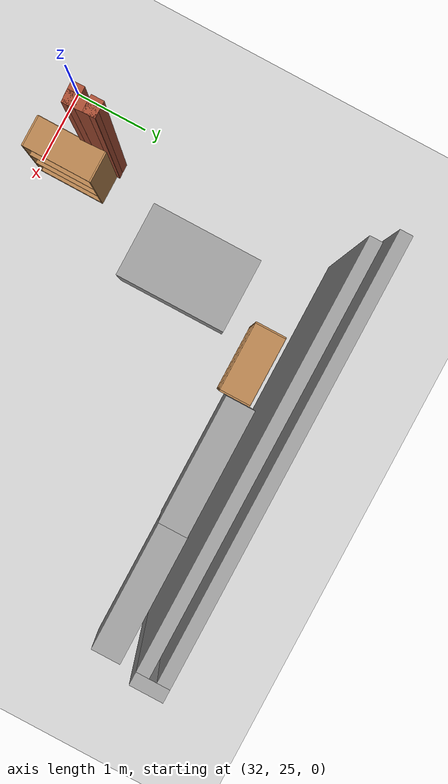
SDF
<sdf version="1.6">
 <world name="default">
  <model name="ground_plane">
   <static>1</static>
   <link name="link">
    <collision name="collision">
     <geometry><plane><normal>0 0 1</normal><size>100 100</size></plane></geometry>
     <surface><friction><ode><mu>100</mu><mu2>50</mu2></ode></friction></surface>
    </collision>
    <visual name="visual">
     <cast_shadows>0</cast_shadows>
     <geometry><plane><normal>0 0 1</normal><size>100 100</size></plane></geometry>
     <material>
      <script><uri>file://media/materials/scripts/gazebo.material</uri><name>Gazebo/Grey</name></script>
     </material>
    </visual>
   </link>
  </model>
  <model name="CVSSP">
   <pose>23.8714 24.094 0 0 -0 0</pose>
   <link name="Wall_101">
    <collision name="Wall_101_Collision">
     <geometry><box><size>0.38805 0.15 2.5</size></box></geometry>
     <pose>0 0 1.25 0 -0 0</pose>
    </collision>
    <visual name="Wall_101_Visual">
     <pose>0 0 1.25 0 -0 0</pose>
     <geometry><box><size>0.38805 0.15 2.5</size></box></geometry>
     <material>
      <script><uri>file://media/materials/scripts/gazebo.material</uri><name>Gazebo/Grey</name></script>
      <ambient>1 1 1 1</ambient>
     </material>
    </visual>
    <pose>13.6125 5.08725 0 0 0 -1.5708</pose>
   </link>
   <link name="Wall_815">
    <collision name="Wall_815_Collision">
     <geometry><box><size>0.199149 0.15 2.5</size></box></geometry>
     <pose>0 0 1.25 0 -0 0</pose>
    </collision>
    <visual name="Wall_815_Visual">
     <pose>0 0 1.25 0 -0 0</pose>
     <geometry><box><size>0.199149 0.15 2.5</size></box></geometry>
     <material>
      <script><uri>file://media/materials/scripts/gazebo.material</uri><name>Gazebo/Bricks</name></script>
      <ambient>1 1 1 1</ambient>
     </material>
    </visual>
    <pose>8.74892 1.83972 0 0 -0 0</pose>
   </link>
   <link name="Wall_816">
    <collision name="Wall_816_Collision">
     <geometry><box><size>0.384892 0.15 2.5</size></box></geometry>
     <pose>0 0 1.25 0 -0 0</pose>
    </collision>
    <visual name="Wall_816_Visual">
     <pose>0 0 1.25 0 -0 0</pose>
     <geometry><box><size>0.384892 0.15 2.5</size></box></geometry>
     <material>
      <script><uri>file://media/materials/scripts/gazebo.material</uri><name>Gazebo/Bricks</name></script>
      <ambient>1 1 1 1</ambient>
     </material>
    </visual>
    <pose>8.77916 1.72252 0 0 0 -1.52245</pose>
   </link>
   <link name="Wall_817">
    <collision name="Wall_817_Collision">
     <geometry><box><size>0.24482 0.15 2.5</size></box></geometry>
     <pose>0 0 1.25 0 -0 0</pose>
    </collision>
    <visual name="Wall_817_Visual">
     <pose>0 0 1.25 0 -0 0</pose>
     <geometry><box><size>0.24482 0.15 2.5</size></box></geometry>
     <material>
      <script><uri>file://media/materials/scripts/gazebo.material</uri><name>Gazebo/Bricks</name></script>
      <ambient>1 1 1 1</ambient>
     </material>
    </visual>
    <pose>8.73757 1.60343 0 0 0 -3.10161</pose>
   </link>
   <link name="Wall_95">
    <collision name="Wall_95_Collision">
     <geometry><box><size>5.10938 0.15 2.5</size></box></geometry>
     <pose>0 0 1.25 0 -0 0</pose>
    </collision>
    <visual name="Wall_95_Visual">
     <pose>0 0 1.25 0 -0 0</pose>
     <geometry><box><size>5.10938 0.15 2.5</size></box></geometry>
     <material>
      <script><uri>file://media/materials/scripts/gazebo.material</uri><name>Gazebo/Grey</name></script>
      <ambient>1 1 1 1</ambient>
     </material>
    </visual>
    <pose>11.1328 4.96823 0 0 -0 0</pose>
   </link>
   <link name="Wall_99">
    <collision name="Wall_99_Collision">
     <geometry><box><size>5.30775 0.15 2.5</size></box></geometry>
     <pose>0 0 1.25 0 -0 0</pose>
    </collision>
    <visual name="Wall_99_Visual">
     <pose>0 0 1.25 0 -0 0</pose>
     <geometry><box><size>5.30775 0.15 2.5</size></box></geometry>
     <material>
      <script><uri>file://media/materials/scripts/gazebo.material</uri><name>Gazebo/Grey</name></script>
      <ambient>1 1 1 1</ambient>
     </material>
    </visual>
    <pose>11.0336 5.20628 0 0 -0 3.14159</pose>
   </link>
   <static>1</static>
  </model>
  <model name="bookshelf_oak">
   <link name="link">
    <inertial><mass>1</mass></inertial>
    <visual name="visual4">
     <pose>0 -0.195 0.03 0 -0 0</pose>
     <geometry><box><size>0.88 0.4 0.06</size></box></geometry>
     <material>
      <script><uri>file://media/materials/scripts/gazebo.material</uri><name>Gazebo/Wood</name></script>
      <shader type="pixel"/>
     </material>
    </visual>
    <visual name="visual3">
     <pose>-0.45 -0.195 0.6 0 -0 0</pose>
     <geometry><box><size>0.02 0.4 1.2</size></box></geometry>
     <material>
      <script><uri>file://media/materials/scripts/gazebo.material</uri><name>Gazebo/Wood</name></script>
      <shader type="pixel"/>
     </material>
    </visual>
    <visual name="visual5">
     <pose>0 -0.195 1.19 0 -0 0</pose>
     <geometry><box><size>0.88 0.4 0.02</size></box></geometry>
     <material>
      <script><uri>file://media/materials/scripts/gazebo.material</uri><name>Gazebo/Wood</name></script>
      <shader type="pixel"/>
     </material>
    </visual>
    <visual name="visual2">
     <pose>0.45 -0.195 0.6 0 -0 0</pose>
     <geometry><box><size>0.02 0.4 1.2</size></box></geometry>
     <material>
      <script><uri>file://media/materials/scripts/gazebo.material</uri><name>Gazebo/Wood</name></script>
      <shader type="pixel"/>
     </material>
    </visual>
    <visual name="visual1">
     <pose>0 0.005 0.6 0 -0 0</pose>
     <geometry><box><size>0.9 0.01 1.2</size></box></geometry>
     <material>
      <script><uri>file://media/materials/scripts/gazebo.material</uri><name>Gazebo/Wood</name></script>
      <shader type="pixel"/>
     </material>
    </visual>
    <visual name="visual6">
     <pose>0 -0.195 0.43 0 -0 0</pose>
     <geometry><box><size>0.88 0.4 0.02</size></box></geometry>
     <material>
      <script><uri>file://media/materials/scripts/gazebo.material</uri><name>Gazebo/Wood</name></script>
      <shader type="pixel"/>
     </material>
    </visual>
    <visual name="visual7">
     <pose>0 -0.195 0.8 0 -0 0</pose>
     <geometry><box><size>0.88 0.4 0.02</size></box></geometry>
     <material>
      <script><uri>file://media/materials/scripts/gazebo.material</uri><name>Gazebo/Wood</name></script>
      <shader type="pixel"/>
     </material>
    </visual>
    <collision name="back">
     <pose>0 0.005 0.6 0 -0 0</pose>
     <geometry><box><size>0.9 0.01 1.2</size></box></geometry>
     <surface>
      <friction>
       <ode><mu>1</mu><mu2>1</mu2><fdir1>0 0 0</fdir1><slip1>0</slip1><slip2>0</slip2></ode>
       <torsional>
        <coefficient>1</coefficient>
        <patch_radius>0</patch_radius>
        <surface_radius>0</surface_radius>
        <use_patch_radius>1</use_patch_radius>
        <ode><slip>0</slip></ode>
       </torsional>
      </friction>
      <bounce><restitution_coefficient>0</restitution_coefficient><threshold>1e+06</threshold></bounce>
      <contact>
       <collide_without_contact>0</collide_without_contact>
       <collide_without_contact_bitmask>1</collide_without_contact_bitmask>
       <collide_bitmask>1</collide_bitmask>
       <ode>
        <soft_cfm>0</soft_cfm>
        <soft_erp>0.2</soft_erp>
        <kp>1e+13</kp>
        <kd>1</kd>
        <max_vel>0.01</max_vel>
        <min_depth>0</min_depth>
       </ode>
       <bullet>
        <split_impulse>1</split_impulse>
        <split_impulse_penetration_threshold>-0.01</split_impulse_penetration_threshold>
        <soft_cfm>0</soft_cfm>
        <soft_erp>0.2</soft_erp>
        <kp>1e+13</kp>
        <kd>1</kd>
       </bullet>
      </contact>
     </surface>
    </collision>
    <collision name="left_side">
     <pose>0.45 -0.195 0.6 0 -0 0</pose>
     <geometry><box><size>0.02 0.4 1.2</size></box></geometry>
     <surface>
      <friction>
       <ode><mu>1</mu><mu2>1</mu2><fdir1>0 0 0</fdir1><slip1>0</slip1><slip2>0</slip2></ode>
       <torsional>
        <coefficient>1</coefficient>
        <patch_radius>0</patch_radius>
        <surface_radius>0</surface_radius>
        <use_patch_radius>1</use_patch_radius>
        <ode><slip>0</slip></ode>
       </torsional>
      </friction>
      <bounce><restitution_coefficient>0</restitution_coefficient><threshold>1e+06</threshold></bounce>
      <contact>
       <collide_without_contact>0</collide_without_contact>
       <collide_without_contact_bitmask>1</collide_without_contact_bitmask>
       <collide_bitmask>1</collide_bitmask>
       <ode>
        <soft_cfm>0</soft_cfm>
        <soft_erp>0.2</soft_erp>
        <kp>1e+13</kp>
        <kd>1</kd>
        <max_vel>0.01</max_vel>
        <min_depth>0</min_depth>
       </ode>
       <bullet>
        <split_impulse>1</split_impulse>
        <split_impulse_penetration_threshold>-0.01</split_impulse_penetration_threshold>
        <soft_cfm>0</soft_cfm>
        <soft_erp>0.2</soft_erp>
        <kp>1e+13</kp>
        <kd>1</kd>
       </bullet>
      </contact>
     </surface>
    </collision>
    <collision name="right_side">
     <pose>-0.45 -0.195 0.6 0 -0 0</pose>
     <geometry><box><size>0.02 0.4 1.2</size></box></geometry>
     <surface>
      <friction>
       <ode><mu>1</mu><mu2>1</mu2><fdir1>0 0 0</fdir1><slip1>0</slip1><slip2>0</slip2></ode>
       <torsional>
        <coefficient>1</coefficient>
        <patch_radius>0</patch_radius>
        <surface_radius>0</surface_radius>
        <use_patch_radius>1</use_patch_radius>
        <ode><slip>0</slip></ode>
       </torsional>
      </friction>
      <bounce><restitution_coefficient>0</restitution_coefficient><threshold>1e+06</threshold></bounce>
      <contact>
       <collide_without_contact>0</collide_without_contact>
       <collide_without_contact_bitmask>1</collide_without_contact_bitmask>
       <collide_bitmask>1</collide_bitmask>
       <ode>
        <soft_cfm>0</soft_cfm>
        <soft_erp>0.2</soft_erp>
        <kp>1e+13</kp>
        <kd>1</kd>
        <max_vel>0.01</max_vel>
        <min_depth>0</min_depth>
       </ode>
       <bullet>
        <split_impulse>1</split_impulse>
        <split_impulse_penetration_threshold>-0.01</split_impulse_penetration_threshold>
        <soft_cfm>0</soft_cfm>
        <soft_erp>0.2</soft_erp>
        <kp>1e+13</kp>
        <kd>1</kd>
       </bullet>
      </contact>
     </surface>
    </collision>
    <collision name="bottom">
     <pose>0 -0.195 0.03 0 -0 0</pose>
     <geometry><box><size>0.88 0.4 0.06</size></box></geometry>
     <surface>
      <friction>
       <ode><mu>1</mu><mu2>1</mu2><fdir1>0 0 0</fdir1><slip1>0</slip1><slip2>0</slip2></ode>
       <torsional>
        <coefficient>1</coefficient>
        <patch_radius>0</patch_radius>
        <surface_radius>0</surface_radius>
        <use_patch_radius>1</use_patch_radius>
        <ode><slip>0</slip></ode>
       </torsional>
      </friction>
      <bounce><restitution_coefficient>0</restitution_coefficient><threshold>1e+06</threshold></bounce>
      <contact>
       <collide_without_contact>0</collide_without_contact>
       <collide_without_contact_bitmask>1</collide_without_contact_bitmask>
       <collide_bitmask>1</collide_bitmask>
       <ode>
        <soft_cfm>0</soft_cfm>
        <soft_erp>0.2</soft_erp>
        <kp>1e+13</kp>
        <kd>1</kd>
        <max_vel>0.01</max_vel>
        <min_depth>0</min_depth>
       </ode>
       <bullet>
        <split_impulse>1</split_impulse>
        <split_impulse_penetration_threshold>-0.01</split_impulse_penetration_threshold>
        <soft_cfm>0</soft_cfm>
        <soft_erp>0.2</soft_erp>
        <kp>1e+13</kp>
        <kd>1</kd>
       </bullet>
      </contact>
     </surface>
    </collision>
    <collision name="top">
     <pose>0 -0.195 1.19 0 -0 0</pose>
     <geometry><box><size>0.88 0.4 0.02</size></box></geometry>
     <surface>
      <friction>
       <ode><mu>1</mu><mu2>1</mu2><fdir1>0 0 0</fdir1><slip1>0</slip1><slip2>0</slip2></ode>
       <torsional>
        <coefficient>1</coefficient>
        <patch_radius>0</patch_radius>
        <surface_radius>0</surface_radius>
        <use_patch_radius>1</use_patch_radius>
        <ode><slip>0</slip></ode>
       </torsional>
      </friction>
      <bounce><restitution_coefficient>0</restitution_coefficient><threshold>1e+06</threshold></bounce>
      <contact>
       <collide_without_contact>0</collide_without_contact>
       <collide_without_contact_bitmask>1</collide_without_contact_bitmask>
       <collide_bitmask>1</collide_bitmask>
       <ode>
        <soft_cfm>0</soft_cfm>
        <soft_erp>0.2</soft_erp>
        <kp>1e+13</kp>
        <kd>1</kd>
        <max_vel>0.01</max_vel>
        <min_depth>0</min_depth>
       </ode>
       <bullet>
        <split_impulse>1</split_impulse>
        <split_impulse_penetration_threshold>-0.01</split_impulse_penetration_threshold>
        <soft_cfm>0</soft_cfm>
        <soft_erp>0.2</soft_erp>
        <kp>1e+13</kp>
        <kd>1</kd>
       </bullet>
      </contact>
     </surface>
    </collision>
    <collision name="low_shelf">
     <pose>0 -0.195 0.43 0 -0 0</pose>
     <geometry><box><size>0.88 0.4 0.02</size></box></geometry>
     <surface>
      <friction>
       <ode><mu>1</mu><mu2>1</mu2><fdir1>0 0 0</fdir1><slip1>0</slip1><slip2>0</slip2></ode>
       <torsional>
        <coefficient>1</coefficient>
        <patch_radius>0</patch_radius>
        <surface_radius>0</surface_radius>
        <use_patch_radius>1</use_patch_radius>
        <ode><slip>0</slip></ode>
       </torsional>
      </friction>
      <bounce><restitution_coefficient>0</restitution_coefficient><threshold>1e+06</threshold></bounce>
      <contact>
       <collide_without_contact>0</collide_without_contact>
       <collide_without_contact_bitmask>1</collide_without_contact_bitmask>
       <collide_bitmask>1</collide_bitmask>
       <ode>
        <soft_cfm>0</soft_cfm>
        <soft_erp>0.2</soft_erp>
        <kp>1e+13</kp>
        <kd>1</kd>
        <max_vel>0.01</max_vel>
        <min_depth>0</min_depth>
       </ode>
       <bullet>
        <split_impulse>1</split_impulse>
        <split_impulse_penetration_threshold>-0.01</split_impulse_penetration_threshold>
        <soft_cfm>0</soft_cfm>
        <soft_erp>0.2</soft_erp>
        <kp>1e+13</kp>
        <kd>1</kd>
       </bullet>
      </contact>
     </surface>
    </collision>
    <collision name="high_shelf">
     <pose>0 -0.195 0.8 0 -0 0</pose>
     <geometry><box><size>0.88 0.4 0.02</size></box></geometry>
     <surface>
      <friction>
       <ode><mu>1</mu><mu2>1</mu2><fdir1>0 0 0</fdir1><slip1>0</slip1><slip2>0</slip2></ode>
       <torsional>
        <coefficient>1</coefficient>
        <patch_radius>0</patch_radius>
        <surface_radius>0</surface_radius>
        <use_patch_radius>1</use_patch_radius>
        <ode><slip>0</slip></ode>
       </torsional>
      </friction>
      <bounce><restitution_coefficient>0</restitution_coefficient><threshold>1e+06</threshold></bounce>
      <contact>
       <collide_without_contact>0</collide_without_contact>
       <collide_without_contact_bitmask>1</collide_without_contact_bitmask>
       <collide_bitmask>1</collide_bitmask>
       <ode>
        <soft_cfm>0</soft_cfm>
        <soft_erp>0.2</soft_erp>
        <kp>1e+13</kp>
        <kd>1</kd>
        <max_vel>0.01</max_vel>
        <min_depth>0</min_depth>
       </ode>
       <bullet>
        <split_impulse>1</split_impulse>
        <split_impulse_penetration_threshold>-0.01</split_impulse_penetration_threshold>
        <soft_cfm>0</soft_cfm>
        <soft_erp>0.2</soft_erp>
        <kp>1e+13</kp>
        <kd>1</kd>
       </bullet>
      </contact>
     </surface>
    </collision>
   </link>
   <static>1</static>
   <pose>34.0934 28.8353 0 0 -0 0</pose>
  </model>
  <model name="bookshelf_ply_wood">
   <link name="link">
    <inertial>
     <mass>1</mass>
     <inertia><ixx>1</ixx><ixy>0</ixy><ixz>0</ixz><iyy>1</iyy><iyz>0</iyz><izz>1</izz></inertia>
    </inertial>
    <gravity>0</gravity>
    <visual name="visual6">
     <pose>0 -0.195 0.43 0 -0 0</pose>
     <geometry><box><size>0.88 0.4 0.02</size></box></geometry>
     <material>
      <script><uri>file://media/materials/scripts/gazebo.material</uri><name>Gazebo/Wood</name></script>
      <shader type="pixel"><normal_map>__default__</normal_map></shader>
      <ambient>1 1 1 1</ambient>
      <diffuse>1 1 1 1</diffuse>
      <specular>0.2 0.2 0.2 1</specular>
      <emissive>0 0 0 1</emissive>
     </material>
    </visual>
    <visual name="visual7">
     <pose>0 -0.195 0.8 0 -0 0</pose>
     <geometry><box><size>0.88 0.4 0.02</size></box></geometry>
     <material>
      <script><uri>file://media/materials/scripts/gazebo.material</uri><name>Gazebo/Wood</name></script>
      <shader type="pixel"><normal_map>__default__</normal_map></shader>
      <ambient>1 1 1 1</ambient>
      <diffuse>1 1 1 1</diffuse>
      <specular>0.2 0.2 0.2 1</specular>
      <emissive>0 0 0 1</emissive>
     </material>
    </visual>
    <visual name="visual2">
     <pose>0.45 -0.195 0.6 0 -0 0</pose>
     <geometry><box><size>0.02 0.4 1.2</size></box></geometry>
     <material>
      <script><uri>file://media/materials/scripts/gazebo.material</uri><name>Gazebo/Wood</name></script>
      <shader type="pixel"><normal_map>__default__</normal_map></shader>
      <ambient>1 1 1 1</ambient>
      <diffuse>1 1 1 1</diffuse>
      <specular>0.2 0.2 0.2 1</specular>
      <emissive>0 0 0 1</emissive>
     </material>
    </visual>
    <visual name="visual4">
     <pose>0 -0.195 0.03 0 -0 0</pose>
     <geometry><box><size>0.88 0.4 0.06</size></box></geometry>
     <material>
      <script><uri>file://media/materials/scripts/gazebo.material</uri><name>Gazebo/Wood</name></script>
      <shader type="pixel"><normal_map>__default__</normal_map></shader>
      <ambient>1 1 1 1</ambient>
      <diffuse>1 1 1 1</diffuse>
      <specular>0.2 0.2 0.2 1</specular>
      <emissive>0 0 0 1</emissive>
     </material>
    </visual>
    <visual name="visual3">
     <pose>-0.45 -0.195 0.6 0 -0 0</pose>
     <geometry><box><size>0.02 0.4 1.2</size></box></geometry>
     <material>
      <script><uri>file://media/materials/scripts/gazebo.material</uri><name>Gazebo/Wood</name></script>
      <shader type="pixel"><normal_map>__default__</normal_map></shader>
      <ambient>1 1 1 1</ambient>
      <diffuse>1 1 1 1</diffuse>
      <specular>0.2 0.2 0.2 1</specular>
      <emissive>0 0 0 1</emissive>
     </material>
    </visual>
    <visual name="visual5">
     <pose>0 -0.195 1.19 0 -0 0</pose>
     <geometry><box><size>0.88 0.4 0.02</size></box></geometry>
     <material>
      <script><uri>file://media/materials/scripts/gazebo.material</uri><name>Gazebo/Wood</name></script>
      <shader type="pixel"><normal_map>__default__</normal_map></shader>
      <ambient>1 1 1 1</ambient>
      <diffuse>1 1 1 1</diffuse>
      <specular>0.2 0.2 0.2 1</specular>
      <emissive>0 0 0 1</emissive>
     </material>
    </visual>
    <visual name="visual1">
     <pose>0 0.005 0.6 0 -0 0</pose>
     <geometry><box><size>0.9 0.01 1.2</size></box></geometry>
     <material>
      <script><uri>file://media/materials/scripts/gazebo.material</uri><name>Gazebo/Wood</name></script>
      <shader type="pixel"><normal_map>__default__</normal_map></shader>
      <ambient>1 1 1 1</ambient>
      <diffuse>1 1 1 1</diffuse>
      <specular>0.2 0.2 0.2 1</specular>
      <emissive>0 0 0 1</emissive>
     </material>
    </visual>
    <collision name="back">
     <pose>0 0.005 0.6 0 -0 0</pose>
     <geometry><box><size>0.9 0.01 1.2</size></box></geometry>
     <surface>
      <friction>
       <ode><mu>1</mu><mu2>1</mu2><fdir1>0 0 0</fdir1><slip1>0</slip1><slip2>0</slip2></ode>
       <torsional>
        <coefficient>1</coefficient>
        <patch_radius>0</patch_radius>
        <surface_radius>0</surface_radius>
        <use_patch_radius>1</use_patch_radius>
        <ode><slip>0</slip></ode>
       </torsional>
      </friction>
      <bounce><restitution_coefficient>0</restitution_coefficient><threshold>1e+06</threshold></bounce>
      <contact>
       <collide_without_contact>0</collide_without_contact>
       <collide_without_contact_bitmask>1</collide_without_contact_bitmask>
       <collide_bitmask>1</collide_bitmask>
       <ode>
        <soft_cfm>0</soft_cfm>
        <soft_erp>0.2</soft_erp>
        <kp>1e+13</kp>
        <kd>1</kd>
        <max_vel>0.01</max_vel>
        <min_depth>0</min_depth>
       </ode>
       <bullet>
        <split_impulse>1</split_impulse>
        <split_impulse_penetration_threshold>-0.01</split_impulse_penetration_threshold>
        <soft_cfm>0</soft_cfm>
        <soft_erp>0.2</soft_erp>
        <kp>1e+13</kp>
        <kd>1</kd>
       </bullet>
      </contact>
     </surface>
    </collision>
    <collision name="left_side">
     <pose>0.45 -0.195 0.6 0 -0 0</pose>
     <geometry><box><size>0.02 0.4 1.2</size></box></geometry>
     <surface>
      <friction>
       <ode><mu>1</mu><mu2>1</mu2><fdir1>0 0 0</fdir1><slip1>0</slip1><slip2>0</slip2></ode>
       <torsional>
        <coefficient>1</coefficient>
        <patch_radius>0</patch_radius>
        <surface_radius>0</surface_radius>
        <use_patch_radius>1</use_patch_radius>
        <ode><slip>0</slip></ode>
       </torsional>
      </friction>
      <bounce><restitution_coefficient>0</restitution_coefficient><threshold>1e+06</threshold></bounce>
      <contact>
       <collide_without_contact>0</collide_without_contact>
       <collide_without_contact_bitmask>1</collide_without_contact_bitmask>
       <collide_bitmask>1</collide_bitmask>
       <ode>
        <soft_cfm>0</soft_cfm>
        <soft_erp>0.2</soft_erp>
        <kp>1e+13</kp>
        <kd>1</kd>
        <max_vel>0.01</max_vel>
        <min_depth>0</min_depth>
       </ode>
       <bullet>
        <split_impulse>1</split_impulse>
        <split_impulse_penetration_threshold>-0.01</split_impulse_penetration_threshold>
        <soft_cfm>0</soft_cfm>
        <soft_erp>0.2</soft_erp>
        <kp>1e+13</kp>
        <kd>1</kd>
       </bullet>
      </contact>
     </surface>
    </collision>
    <collision name="right_side">
     <pose>-0.45 -0.195 0.6 0 -0 0</pose>
     <geometry><box><size>0.02 0.4 1.2</size></box></geometry>
     <surface>
      <friction>
       <ode><mu>1</mu><mu2>1</mu2><fdir1>0 0 0</fdir1><slip1>0</slip1><slip2>0</slip2></ode>
       <torsional>
        <coefficient>1</coefficient>
        <patch_radius>0</patch_radius>
        <surface_radius>0</surface_radius>
        <use_patch_radius>1</use_patch_radius>
        <ode><slip>0</slip></ode>
       </torsional>
      </friction>
      <bounce><restitution_coefficient>0</restitution_coefficient><threshold>1e+06</threshold></bounce>
      <contact>
       <collide_without_contact>0</collide_without_contact>
       <collide_without_contact_bitmask>1</collide_without_contact_bitmask>
       <collide_bitmask>1</collide_bitmask>
       <ode>
        <soft_cfm>0</soft_cfm>
        <soft_erp>0.2</soft_erp>
        <kp>1e+13</kp>
        <kd>1</kd>
        <max_vel>0.01</max_vel>
        <min_depth>0</min_depth>
       </ode>
       <bullet>
        <split_impulse>1</split_impulse>
        <split_impulse_penetration_threshold>-0.01</split_impulse_penetration_threshold>
        <soft_cfm>0</soft_cfm>
        <soft_erp>0.2</soft_erp>
        <kp>1e+13</kp>
        <kd>1</kd>
       </bullet>
      </contact>
     </surface>
    </collision>
    <collision name="bottom">
     <pose>0 -0.195 0.03 0 -0 0</pose>
     <geometry><box><size>0.88 0.4 0.06</size></box></geometry>
     <surface>
      <friction>
       <ode><mu>1</mu><mu2>1</mu2><fdir1>0 0 0</fdir1><slip1>0</slip1><slip2>0</slip2></ode>
       <torsional>
        <coefficient>1</coefficient>
        <patch_radius>0</patch_radius>
        <surface_radius>0</surface_radius>
        <use_patch_radius>1</use_patch_radius>
        <ode><slip>0</slip></ode>
       </torsional>
      </friction>
      <bounce><restitution_coefficient>0</restitution_coefficient><threshold>1e+06</threshold></bounce>
      <contact>
       <collide_without_contact>0</collide_without_contact>
       <collide_without_contact_bitmask>1</collide_without_contact_bitmask>
       <collide_bitmask>1</collide_bitmask>
       <ode>
        <soft_cfm>0</soft_cfm>
        <soft_erp>0.2</soft_erp>
        <kp>1e+13</kp>
        <kd>1</kd>
        <max_vel>0.01</max_vel>
        <min_depth>0</min_depth>
       </ode>
       <bullet>
        <split_impulse>1</split_impulse>
        <split_impulse_penetration_threshold>-0.01</split_impulse_penetration_threshold>
        <soft_cfm>0</soft_cfm>
        <soft_erp>0.2</soft_erp>
        <kp>1e+13</kp>
        <kd>1</kd>
       </bullet>
      </contact>
     </surface>
    </collision>
    <collision name="top">
     <pose>0 -0.195 1.19 0 -0 0</pose>
     <geometry><box><size>0.88 0.4 0.02</size></box></geometry>
     <surface>
      <friction>
       <ode><mu>1</mu><mu2>1</mu2><fdir1>0 0 0</fdir1><slip1>0</slip1><slip2>0</slip2></ode>
       <torsional>
        <coefficient>1</coefficient>
        <patch_radius>0</patch_radius>
        <surface_radius>0</surface_radius>
        <use_patch_radius>1</use_patch_radius>
        <ode><slip>0</slip></ode>
       </torsional>
      </friction>
      <bounce><restitution_coefficient>0</restitution_coefficient><threshold>1e+06</threshold></bounce>
      <contact>
       <collide_without_contact>0</collide_without_contact>
       <collide_without_contact_bitmask>1</collide_without_contact_bitmask>
       <collide_bitmask>1</collide_bitmask>
       <ode>
        <soft_cfm>0</soft_cfm>
        <soft_erp>0.2</soft_erp>
        <kp>1e+13</kp>
        <kd>1</kd>
        <max_vel>0.01</max_vel>
        <min_depth>0</min_depth>
       </ode>
       <bullet>
        <split_impulse>1</split_impulse>
        <split_impulse_penetration_threshold>-0.01</split_impulse_penetration_threshold>
        <soft_cfm>0</soft_cfm>
        <soft_erp>0.2</soft_erp>
        <kp>1e+13</kp>
        <kd>1</kd>
       </bullet>
      </contact>
     </surface>
    </collision>
    <collision name="low_shelf">
     <pose>0 -0.195 0.43 0 -0 0</pose>
     <geometry><box><size>0.88 0.4 0.02</size></box></geometry>
     <surface>
      <friction>
       <ode><mu>1</mu><mu2>1</mu2><fdir1>0 0 0</fdir1><slip1>0</slip1><slip2>0</slip2></ode>
       <torsional>
        <coefficient>1</coefficient>
        <patch_radius>0</patch_radius>
        <surface_radius>0</surface_radius>
        <use_patch_radius>1</use_patch_radius>
        <ode><slip>0</slip></ode>
       </torsional>
      </friction>
      <bounce><restitution_coefficient>0</restitution_coefficient><threshold>1e+06</threshold></bounce>
      <contact>
       <collide_without_contact>0</collide_without_contact>
       <collide_without_contact_bitmask>1</collide_without_contact_bitmask>
       <collide_bitmask>1</collide_bitmask>
       <ode>
        <soft_cfm>0</soft_cfm>
        <soft_erp>0.2</soft_erp>
        <kp>1e+13</kp>
        <kd>1</kd>
        <max_vel>0.01</max_vel>
        <min_depth>0</min_depth>
       </ode>
       <bullet>
        <split_impulse>1</split_impulse>
        <split_impulse_penetration_threshold>-0.01</split_impulse_penetration_threshold>
        <soft_cfm>0</soft_cfm>
        <soft_erp>0.2</soft_erp>
        <kp>1e+13</kp>
        <kd>1</kd>
       </bullet>
      </contact>
     </surface>
    </collision>
    <collision name="high_shelf">
     <pose>0 -0.195 0.8 0 -0 0</pose>
     <geometry><box><size>0.88 0.4 0.02</size></box></geometry>
     <surface>
      <friction>
       <ode><mu>1</mu><mu2>1</mu2><fdir1>0 0 0</fdir1><slip1>0</slip1><slip2>0</slip2></ode>
       <torsional>
        <coefficient>1</coefficient>
        <patch_radius>0</patch_radius>
        <surface_radius>0</surface_radius>
        <use_patch_radius>1</use_patch_radius>
        <ode><slip>0</slip></ode>
       </torsional>
      </friction>
      <bounce><restitution_coefficient>0</restitution_coefficient><threshold>1e+06</threshold></bounce>
      <contact>
       <collide_without_contact>0</collide_without_contact>
       <collide_without_contact_bitmask>1</collide_without_contact_bitmask>
       <collide_bitmask>1</collide_bitmask>
       <ode>
        <soft_cfm>0</soft_cfm>
        <soft_erp>0.2</soft_erp>
        <kp>1e+13</kp>
        <kd>1</kd>
        <max_vel>0.01</max_vel>
        <min_depth>0</min_depth>
       </ode>
       <bullet>
        <split_impulse>1</split_impulse>
        <split_impulse_penetration_threshold>-0.01</split_impulse_penetration_threshold>
        <soft_cfm>0</soft_cfm>
        <soft_erp>0.2</soft_erp>
        <kp>1e+13</kp>
        <kd>1</kd>
       </bullet>
      </contact>
     </surface>
    </collision>
   </link>
   <static>1</static>
   <pose>32.7239 25.5103 0 0 -0 1.56767</pose>
  </model>
  <model name="ply_wood_under_box_clone_0">
   <link name="link">
    <inertial>
     <mass>1</mass>
     <inertia>
      <ixx>0.166667</ixx>
      <ixy>0</ixy>
      <ixz>0</ixz>
      <iyy>0.166667</iyy>
      <iyz>0</iyz>
      <izz>0.166667</izz>
     </inertia>
    </inertial>
    <gravity>0</gravity>
    <visual name="visual">
     <geometry><box><size>1 1.50222 0.628617</size></box></geometry>
     <material>
      <script><name>Gazebo/Grey</name><uri>file://media/materials/scripts/gazebo.material</uri></script>
      <shader type="pixel"><normal_map>__default__</normal_map></shader>
     </material>
    </visual>
    <collision name="collision">
     <geometry><box><size>1 1.50222 0.628617</size></box></geometry>
     <surface>
      <friction>
       <ode><mu>1</mu><mu2>1</mu2><fdir1>0 0 0</fdir1><slip1>0</slip1><slip2>0</slip2></ode>
       <torsional>
        <coefficient>1</coefficient>
        <patch_radius>0</patch_radius>
        <surface_radius>0</surface_radius>
        <use_patch_radius>1</use_patch_radius>
        <ode><slip>0</slip></ode>
       </torsional>
      </friction>
      <bounce><restitution_coefficient>0</restitution_coefficient><threshold>1e+06</threshold></bounce>
      <contact>
       <collide_without_contact>0</collide_without_contact>
       <collide_without_contact_bitmask>1</collide_without_contact_bitmask>
       <collide_bitmask>1</collide_bitmask>
       <ode>
        <soft_cfm>0</soft_cfm>
        <soft_erp>0.2</soft_erp>
        <kp>1e+13</kp>
        <kd>1</kd>
        <max_vel>0.01</max_vel>
        <min_depth>0</min_depth>
       </ode>
       <bullet>
        <split_impulse>1</split_impulse>
        <split_impulse_penetration_threshold>-0.01</split_impulse_penetration_threshold>
        <soft_cfm>0</soft_cfm>
        <soft_erp>0.2</soft_erp>
        <kp>1e+13</kp>
        <kd>1</kd>
       </bullet>
      </contact>
     </surface>
    </collision>
   </link>
   <static>1</static>
   <pose>33.3982 27.4106 0.362453 0 -0 0</pose>
  </model>
  <model name="plastic_box">
   <link name="Wall">
    <pose>0 0 0.1985 0 -0 0</pose>
    <inertial>
     <mass>5</mass>
     <inertia><ixx>0.1022</ixx><iyy>0.4107</iyy><izz>0.3815</izz><ixy>0</ixy><ixz>0</ixz><iyz>0</iyz></inertia>
    </inertial>
    <gravity>0</gravity>
    <visual name="Wall_Visual">
     <geometry><box><size>1.75 0.4 1</size></box></geometry>
     <material>
      <script><uri>file://media/materials/scripts/gazebo.material</uri><name>Gazebo/Grey</name></script>
      <ambient>1 1 1 1</ambient>
      <shader type="pixel"><normal_map>__default__</normal_map></shader>
      <diffuse>0.7 0.7 0.7 1</diffuse>
      <specular>0.01 0.01 0.01 1</specular>
      <emissive>0 0 0 1</emissive>
     </material>
    </visual>
    <collision name="Wall_Collision">
     <geometry><box><size>1.75 0.4 1</size></box></geometry>
     <surface>
      <friction>
       <ode><mu>1</mu><mu2>1</mu2><fdir1>0 0 0</fdir1><slip1>0</slip1><slip2>0</slip2></ode>
       <torsional>
        <coefficient>1</coefficient>
        <patch_radius>0</patch_radius>
        <surface_radius>0</surface_radius>
        <use_patch_radius>1</use_patch_radius>
        <ode><slip>0</slip></ode>
       </torsional>
      </friction>
      <bounce><restitution_coefficient>0</restitution_coefficient><threshold>1e+06</threshold></bounce>
      <contact>
       <collide_without_contact>0</collide_without_contact>
       <collide_without_contact_bitmask>1</collide_without_contact_bitmask>
       <collide_bitmask>1</collide_bitmask>
       <ode>
        <soft_cfm>0</soft_cfm>
        <soft_erp>0.2</soft_erp>
        <kp>1e+13</kp>
        <kd>1</kd>
        <max_vel>0.01</max_vel>
        <min_depth>0</min_depth>
       </ode>
       <bullet>
        <split_impulse>1</split_impulse>
        <split_impulse_penetration_threshold>-0.01</split_impulse_penetration_threshold>
        <soft_cfm>0</soft_cfm>
        <soft_erp>0.2</soft_erp>
        <kp>1e+13</kp>
        <kd>1</kd>
       </bullet>
      </contact>
     </surface>
    </collision>
   </link>
   <static>1</static>
   <pose>35.4417 28.7571 0.128476 0 -0 0</pose>
  </model>
  <model name="plastic_box_0_clone">
   <link name="Wall">
    <pose>0 0 0.1985 0 -0 0</pose>
    <inertial>
     <mass>5</mass>
     <inertia><ixx>0.1022</ixx><iyy>0.4107</iyy><izz>0.3815</izz><ixy>0</ixy><ixz>0</ixz><iyz>0</iyz></inertia>
    </inertial>
    <gravity>0</gravity>
    <visual name="Wall_Visual">
     <geometry><box><size>1.75 0.4 0.75</size></box></geometry>
     <material>
      <script><uri>file://media/materials/scripts/gazebo.material</uri><name>Gazebo/Grey</name></script>
      <ambient>1 1 1 1</ambient>
      <shader type="pixel"><normal_map>__default__</normal_map></shader>
      <diffuse>0.7 0.7 0.7 1</diffuse>
      <specular>0.01 0.01 0.01 1</specular>
      <emissive>0 0 0 1</emissive>
     </material>
    </visual>
    <collision name="Wall_Collision">
     <geometry><box><size>1.75 0.4 0.75</size></box></geometry>
     <surface>
      <friction>
       <ode><mu>1</mu><mu2>1</mu2><fdir1>0 0 0</fdir1><slip1>0</slip1><slip2>0</slip2></ode>
       <torsional>
        <coefficient>1</coefficient>
        <patch_radius>0</patch_radius>
        <surface_radius>0</surface_radius>
        <use_patch_radius>1</use_patch_radius>
        <ode><slip>0</slip></ode>
       </torsional>
      </friction>
      <bounce><restitution_coefficient>0</restitution_coefficient><threshold>1e+06</threshold></bounce>
      <contact>
       <collide_without_contact>0</collide_without_contact>
       <collide_without_contact_bitmask>1</collide_without_contact_bitmask>
       <collide_bitmask>1</collide_bitmask>
       <ode>
        <soft_cfm>0</soft_cfm>
        <soft_erp>0.2</soft_erp>
        <kp>1e+13</kp>
        <kd>1</kd>
        <max_vel>0.01</max_vel>
        <min_depth>0</min_depth>
       </ode>
       <bullet>
        <split_impulse>1</split_impulse>
        <split_impulse_penetration_threshold>-0.01</split_impulse_penetration_threshold>
        <soft_cfm>0</soft_cfm>
        <soft_erp>0.2</soft_erp>
        <kp>1e+13</kp>
        <kd>1</kd>
       </bullet>
      </contact>
     </surface>
    </collision>
   </link>
   <static>1</static>
   <pose>37.1813 28.7634 0.248155 0 -0 0</pose>
  </model>
 </world>
</sdf>
